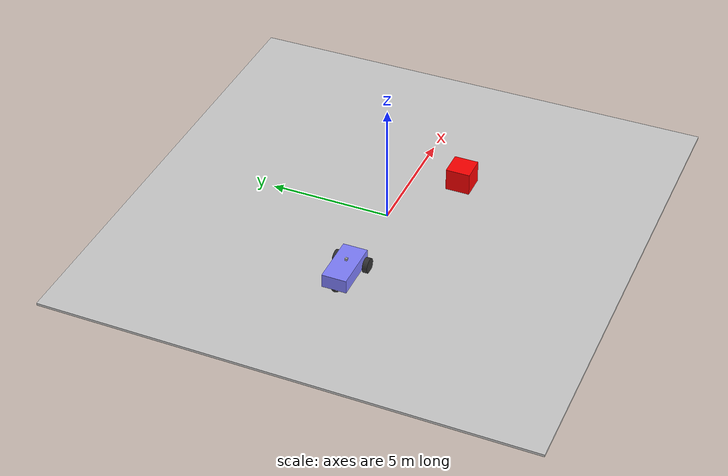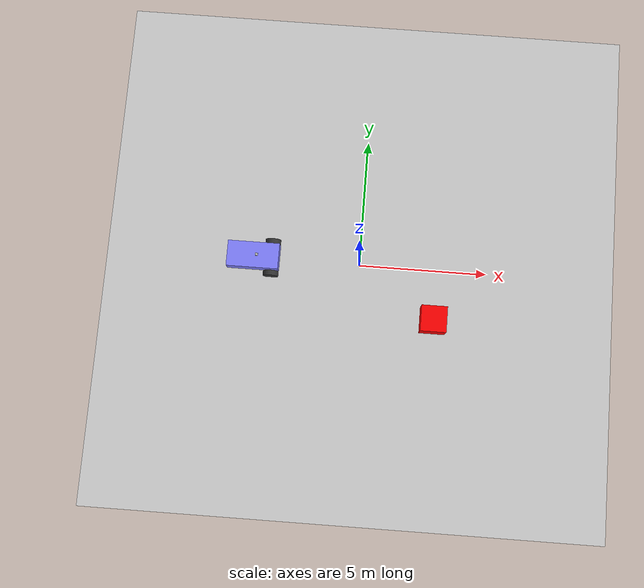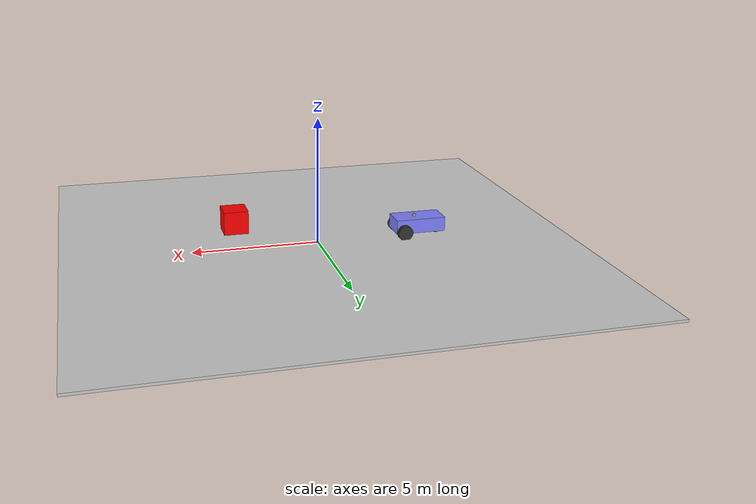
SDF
<?xml version="1.0" ?>
<!--
  You can echo lidar messages using:
    ign topic -e -t /lidar
-->
<sdf version="1.6">
  <world name="shopping_bot_world">
    <physics name="1ms" type="ignored">
      <max_step_size>0.001</max_step_size>
      <real_time_factor>1.0</real_time_factor>
    </physics>
    <plugin
      filename="ignition-gazebo-physics-system"
      name="gz::sim::systems::Physics">
    </plugin>
    <plugin
      filename="ignition-gazebo-scene-broadcaster-system"
      name="gz::sim::systems::SceneBroadcaster">
    </plugin>

    <light type="directional" name="sun">
      <cast_shadows>true</cast_shadows>
      <pose>0 0 10 0 0 0</pose>
      <diffuse>0.8 0.8 0.8 1</diffuse>
      <specular>0.2 0.2 0.2 1</specular>
      <attenuation>
        <range>1000</range>
        <constant>0.9</constant>
        <linear>0.01</linear>
        <quadratic>0.001</quadratic>
      </attenuation>
      <direction>-0.5 0.1 -0.9</direction>
    </light>

    <model name="ground_plane">
      <static>true</static>
      <link name="link">
        <collision name="collision">
          <geometry>
            <box>
              <size>20 20 0.1</size>
            </box>
          </geometry>
        </collision>
        <visual name="visual">
          <geometry>
            <box>
              <size>20 20 0.1</size>
            </box>
          </geometry>
          <material>
            <ambient>0.8 0.8 0.8 1</ambient>
            <diffuse>0.8 0.8 0.8 1</diffuse>
            <specular>0.8 0.8 0.8 1</specular>
          </material>
        </visual>
      </link>
    </model>

    <model name="box">
      <pose>3 -2 0.5 0 0 0</pose>
      <link name="box_link">
        <inertial>
          <inertia>
            <ixx>1</ixx>
            <ixy>0</ixy>
            <ixz>0</ixz>
            <iyy>1</iyy>
            <iyz>0</iyz>
            <izz>1</izz>
          </inertia>
          <mass>1.0</mass>
        </inertial>
        <collision name="box_collision">
          <geometry>
            <box>
              <size>1 1 1</size>
            </box>
          </geometry>
        </collision>

        <visual name="box_visual">
          <geometry>
            <box>
              <size>1 1 1</size>
            </box>
          </geometry>
          <material>
            <ambient>1 0 0 1</ambient>
            <diffuse>1 0 0 1</diffuse>
            <specular>1 0 0 1</specular>
          </material>
        </visual>
      </link>
    </model>

    <model name='shopping_bot'>
      <pose>-4 0 0.325 0 0 0.0</pose>
      <link name='chassis'>
        <pose>-0.151427 -0 0.175 0 -0 0</pose>
        <inertial>
          <mass>1.14395</mass>
          <inertia>
            <ixx>0.126164</ixx>
            <ixy>0</ixy>
            <ixz>0</ixz>
            <iyy>0.416519</iyy>
            <iyz>0</iyz>
            <izz>0.481014</izz>
          </inertia>
        </inertial>
        <visual name='visual'>
          <geometry>
            <box>
              <size>2.01142 1 0.568726</size>
            </box>
          </geometry>
          <material>
            <ambient>0.5 0.5 1.0 1</ambient>
            <diffuse>0.5 0.5 1.0 1</diffuse>
            <specular>0.0 0.0 1.0 1</specular>
          </material>
        </visual>
        <collision name='collision'>
          <geometry>
            <box>
              <size>2.01142 1 0.568726</size>
            </box>
          </geometry>
        </collision>
      </link>

      <link name="lidar_link">
        <pose>0 0 0.5 0 0 0</pose>
        <inertial>
          <mass>0.1</mass>
          <inertia>
            <ixx>0.000166667</ixx>
            <iyy>0.000166667</iyy>
            <izz>0.000166667</izz>
          </inertia>
        </inertial>
        <collision name="collision">
          <geometry>
            <box>
              <size>0.1 0.1 0.1</size>
            </box>
          </geometry>
        </collision>
        <visual name="visual">
          <geometry>
            <box>
              <size>0.1 0.1 0.1</size>
            </box>
          </geometry>
        </visual>
      </link>

      <link name='left_wheel'>
        <pose>0.554283 0.625029 -0.025 -1.5707 0 0</pose>
        <inertial>
          <mass>2</mass>
          <inertia>
            <ixx>0.145833</ixx>
            <ixy>0</ixy>
            <ixz>0</ixz>
            <iyy>0.145833</iyy>
            <iyz>0</iyz>
            <izz>0.125</izz>
          </inertia>
        </inertial>
        <visual name='visual'>
          <geometry>
            <cylinder>
              <radius>0.3</radius>
              <length>0.2</length>
            </cylinder>
          </geometry>
          <material>
            <ambient>0.2 0.2 0.2 1</ambient>
            <diffuse>0.2 0.2 0.2 1</diffuse>
            <specular>0.2 0.2 0.2 1</specular>
          </material>
        </visual>
        <collision name='collision'>
          <geometry>
            <cylinder>
              <radius>0.3</radius>
              <length>0.2</length>
            </cylinder>
          </geometry>
        </collision>
      </link>

      <link name='right_wheel'>
        <pose>0.554282 -0.625029 -0.025 -1.5707 0 0</pose>
        <inertial>
          <mass>2</mass>
          <inertia>
            <ixx>0.145833</ixx>
            <ixy>0</ixy>
            <ixz>0</ixz>
            <iyy>0.145833</iyy>
            <iyz>0</iyz>
            <izz>0.125</izz>
          </inertia>
        </inertial>
        <visual name='visual'>
          <geometry>
            <cylinder>
              <radius>0.3</radius>
              <length>0.2</length>
            </cylinder>
          </geometry>
          <material>
            <ambient>0.2 0.2 0.2 1</ambient>
            <diffuse>0.2 0.2 0.2 1</diffuse>
            <specular>0.2 0.2 0.2 1</specular>
          </material>
        </visual>
        <collision name='collision'>
          <geometry>
            <cylinder>
              <radius>0.3</radius>
              <length>0.2</length>
            </cylinder>
          </geometry>
        </collision>
      </link>

      <link name='caster'>
        <pose>-0.957138 -0 -0.125 0 -0 0</pose>
        <inertial>
          <mass>1</mass>
          <inertia>
            <ixx>0.1</ixx>
            <ixy>0</ixy>
            <ixz>0</ixz>
            <iyy>0.1</iyy>
            <iyz>0</iyz>
            <izz>0.1</izz>
          </inertia>
        </inertial>
        <visual name='visual'>
          <geometry>
            <sphere>
              <radius>0.2</radius>
            </sphere>
          </geometry>
          <material>
            <ambient>0.2 0.2 0.2 1</ambient>
            <diffuse>0.2 0.2 0.2 1</diffuse>
            <specular>0.2 0.2 0.2 1</specular>
          </material>
        </visual>
        <collision name='collision'>
          <geometry>
            <sphere>
              <radius>0.2</radius>
            </sphere>
          </geometry>
        </collision>
      </link>

      <joint name='lidar_sensor_joint' type='fixed'>
        <parent>chassis</parent>
        <child>lidar_link</child>
      </joint>

      <joint name='left_wheel_joint' type='revolute'>
        <parent>chassis</parent>
        <child>left_wheel</child>
        <axis>
          <xyz>0 0 1</xyz>
          <limit>
            <lower>-1.79769e+308</lower>
            <upper>1.79769e+308</upper>
          </limit>
        </axis>
      </joint>

      <joint name='right_wheel_joint' type='revolute'>
        <parent>chassis</parent>
        <child>right_wheel</child>
        <axis>
          <xyz>0 0 1</xyz>
          <limit>
            <lower>-1.79769e+308</lower>
            <upper>1.79769e+308</upper>
          </limit>
        </axis>
      </joint>

      <joint name='caster_wheel' type='ball'>
        <parent>chassis</parent>
        <child>caster</child>
      </joint>

      <plugin
        filename="gz-sim-diff-drive-system"
        name="gz::sim::systems::DiffDrive">
        <left_joint>left_wheel_joint</left_joint>
        <right_joint>right_wheel_joint</right_joint>
        <wheel_separation>1.25</wheel_separation>
        <wheel_radius>0.3</wheel_radius>
        <odom_publish_frequency>1</odom_publish_frequency>
      </plugin>

    </model>

  </world>
</sdf>
